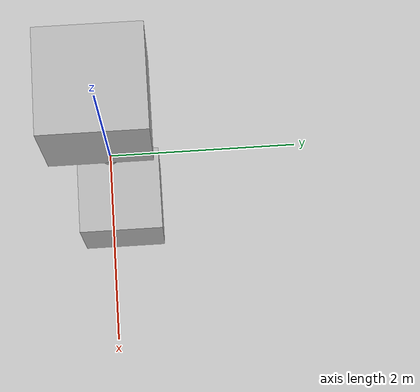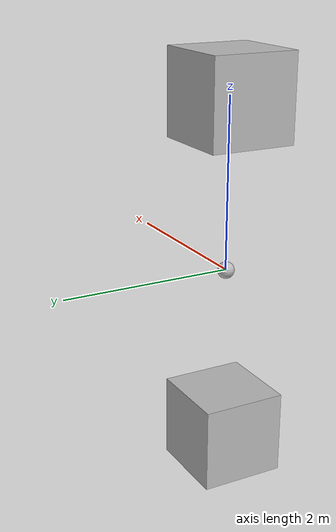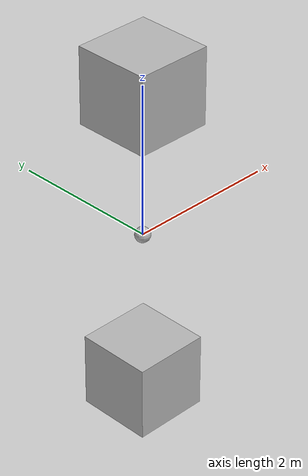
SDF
<sdf version="1.5">
  <world name='default'>
    <gravity>0 0 0</gravity>
    <physics type="dart">
      <gravity>0.0 0.0 0</gravity>
      <real_time_update_rate>1000.000000</real_time_update_rate>
      <max_step_size>0.001000</max_step_size>
    </physics>
    <model name="M">
      <link name="link1">
        <pose>0 0 2 0 0 0</pose>
        <inertial>
          <mass>1.0</mass>
          <inertia>
            <ixx>1.0</ixx>
            <iyy>1.0</iyy>
            <izz>1.0</izz>
            <ixy>0.0</ixy>
            <ixz>0.0</ixz>
            <iyz>0.0</iyz>
          </inertia>
        </inertial>
        <visual name="v1">
          <geometry>
            <box>
              <size>1 1 1</size>
            </box>
          </geometry>
        </visual>
        <visual name='v2'>
          <pose>0 0 -2 0 0 0</pose>
          <geometry>
            <sphere>
              <radius>0.1</radius>
            </sphere>
          </geometry>
        </visual>
      </link>
      <joint name="revJoint" type="revolute">
        <pose>0 0 2 0 0 0</pose>
        <parent>link1</parent>
        <child>link2</child>
        <axis>
          <xyz>1 0 0</xyz>
        </axis>
      </joint>
      <link name="link2">
        <pose>0 0 -2 0 0 0</pose>
        <inertial>
          <mass>1.0</mass>
          <inertia>
            <ixx>1.0</ixx>
            <iyy>1.0</iyy>
            <izz>1.0</izz>
            <ixy>0.0</ixy>
            <ixz>0.0</ixz>
            <iyz>0.0</iyz>
          </inertia>
        </inertial>
        <visual name='v1'>
          <geometry>
            <box>
              <size>1 1 1</size>
            </box>
          </geometry>
        </visual>
      </link>
    </model>
  </world>
</sdf>
